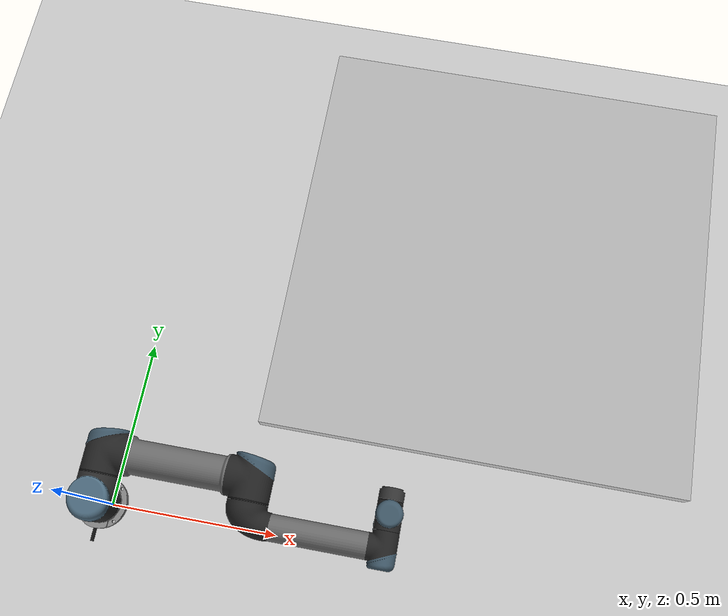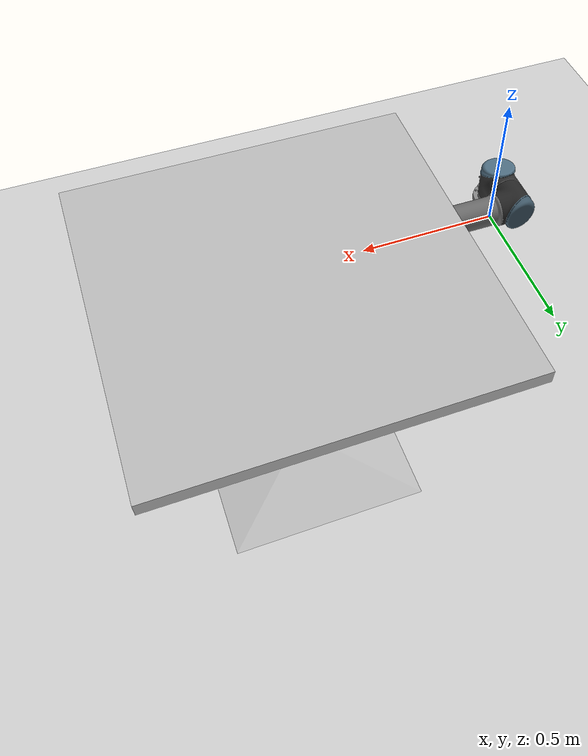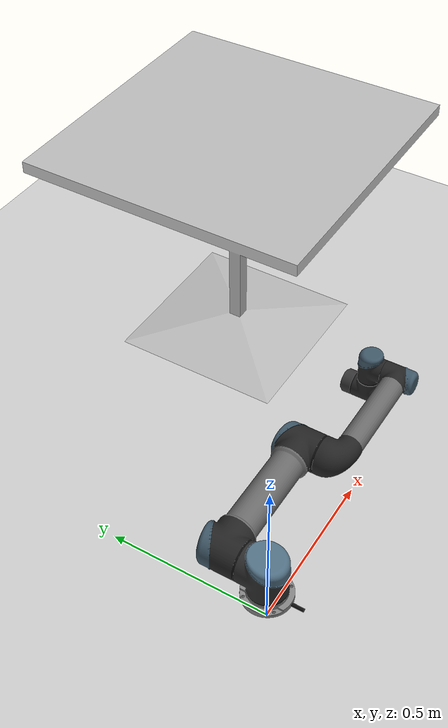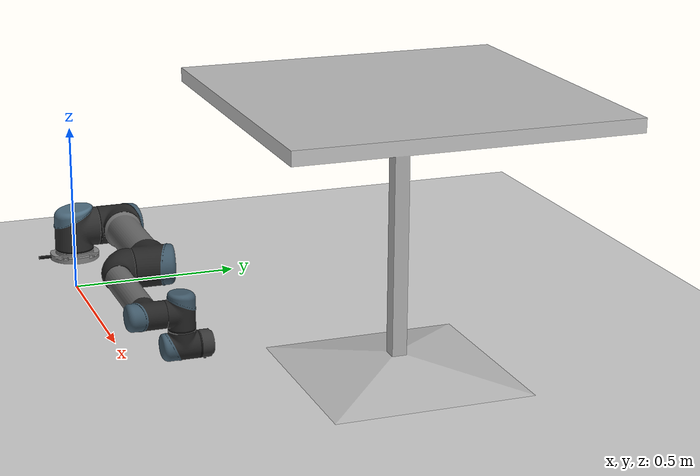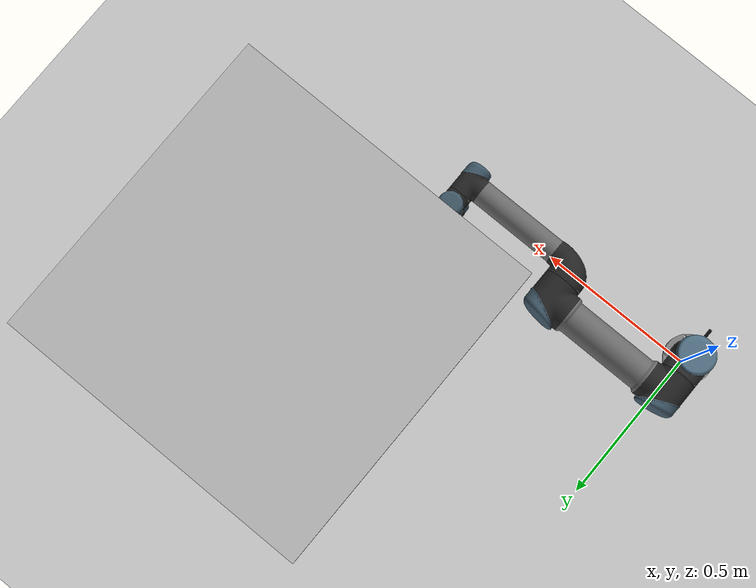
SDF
<sdf version="1.6">
 <world name="default">
  <light name="sun" type="directional">
   <pose>0 0 10 0 -0 0</pose>
   <diffuse>0.8 0.8 0.8 1</diffuse>
   <specular>0.2 0.2 0.2 1</specular>
   <attenuation>
    <range>1000</range>
    <constant>0.9</constant>
    <linear>0.01</linear>
    <quadratic>0.001</quadratic>
   </attenuation>
   <direction>-0.5 0.1 -0.9</direction>
  </light>
  <model name="ground_plane">
   <static>1</static>
   <link name="link">
    <collision name="collision">
     <geometry><plane><normal>0 0 1</normal><size>100 100</size></plane></geometry>
     <surface>
      <contact><collide_bitmask>65535</collide_bitmask></contact>
      <friction><ode><mu>100</mu><mu2>50</mu2></ode></friction>
     </surface>
    </collision>
    <visual name="visual">
     <cast_shadows>0</cast_shadows>
     <geometry><plane><normal>0 0 1</normal><size>100 100</size></plane></geometry>
     <material>
      <script><uri>file://media/materials/scripts/gazebo.material</uri><name>Gazebo/Grey</name></script>
     </material>
    </visual>
   </link>
  </model>
  <gravity>0 0 -9.8</gravity>
  <magnetic_field>6e-06 2.3e-05 -4.2e-05</magnetic_field>
  <atmosphere type="adiabatic"/>
  <physics name="default_physics" default="0" type="ode">
   <max_step_size>0.001</max_step_size>
   <real_time_factor>1</real_time_factor>
   <real_time_update_rate>1000</real_time_update_rate>
  </physics>
  <scene><ambient>0.4 0.4 0.4 1</ambient><background>0.7 0.7 0.7 1</background><shadows>1</shadows></scene>
  <audio><device>default</device></audio>
  <spherical_coordinates>
   <surface_model>EARTH_WGS84</surface_model>
   <latitude_deg>0</latitude_deg>
   <longitude_deg>0</longitude_deg>
   <elevation>0</elevation>
   <heading_deg>0</heading_deg>
  </spherical_coordinates>
  <model name="robot">
   <link name="base_link">
    <inertial>
     <mass>4</mass>
     <inertia>
      <ixx>0.00443333</ixx>
      <ixy>0</ixy>
      <ixz>0</ixz>
      <iyy>0.00443333</iyy>
      <iyz>0</iyz>
      <izz>0.0072</izz>
     </inertia>
    </inertial>
    <collision name="base_link_collision">
     <geometry>
      <mesh>
       <scale>1 1 1</scale>
       <uri>/home/gizem/catkin_ws/src/fmauch_universal_robot/ur_description/meshes/ur5/collision/base.stl</uri>
      </mesh>
     </geometry>
    </collision>
    <visual name="base_link_visual">
     <geometry>
      <mesh>
       <scale>1 1 1</scale>
       <uri>/home/gizem/catkin_ws/src/fmauch_universal_robot/ur_description/meshes/ur5/visual/base.dae</uri>
      </mesh>
     </geometry>
    </visual>
   </link>
   <joint name="world_joint" type="fixed"><child>base_link</child><parent>world</parent></joint>
   <link name="shoulder_link">
    <pose>0 0 0.089159 0 -0 0</pose>
    <inertial>
     <mass>3.7</mass>
     <inertia>
      <ixx>0.0102675</ixx>
      <ixy>0</ixy>
      <ixz>0</ixz>
      <iyy>0.0102675</iyy>
      <iyz>0</iyz>
      <izz>0.00666</izz>
     </inertia>
    </inertial>
    <collision name="shoulder_link_collision">
     <geometry>
      <mesh>
       <scale>1 1 1</scale>
       <uri>/home/gizem/catkin_ws/src/fmauch_universal_robot/ur_description/meshes/ur5/collision/shoulder.stl</uri>
      </mesh>
     </geometry>
    </collision>
    <visual name="shoulder_link_visual">
     <geometry>
      <mesh>
       <scale>1 1 1</scale>
       <uri>/home/gizem/catkin_ws/src/fmauch_universal_robot/ur_description/meshes/ur5/visual/shoulder.dae</uri>
      </mesh>
     </geometry>
     <material><script><uri>__default__</uri><name>__default__</name></script></material>
    </visual>
    <self_collide>1</self_collide>
   </link>
   <joint name="shoulder_pan_joint" type="revolute">
    <child>shoulder_link</child>
    <parent>base_link</parent>
    <axis>
     <xyz>0 0 1</xyz>
     <limit><lower>-6.28319</lower><upper>6.28319</upper><effort>150</effort><velocity>3.15</velocity></limit>
     <dynamics>
      <damping>0</damping>
      <friction>0</friction>
      <spring_reference>0</spring_reference>
      <spring_stiffness>0</spring_stiffness>
     </dynamics>
     <use_parent_model_frame>1</use_parent_model_frame>
    </axis>
   </joint>
   <link name="upper_arm_link">
    <pose>0 0.13585 0.089159 3.14159 1.57079 3.14159</pose>
    <inertial>
     <pose>0 0 0.28 0 -0 0</pose>
     <mass>8.393</mass>
     <inertia>
      <ixx>0.226891</ixx>
      <ixy>0</ixy>
      <ixz>0</ixz>
      <iyy>0.226891</iyy>
      <iyz>0</iyz>
      <izz>0.0151074</izz>
     </inertia>
    </inertial>
    <collision name="upper_arm_link_collision">
     <geometry>
      <mesh>
       <scale>1 1 1</scale>
       <uri>/home/gizem/catkin_ws/src/fmauch_universal_robot/ur_description/meshes/ur5/collision/upperarm.stl</uri>
      </mesh>
     </geometry>
    </collision>
    <visual name="upper_arm_link_visual">
     <geometry>
      <mesh>
       <scale>1 1 1</scale>
       <uri>/home/gizem/catkin_ws/src/fmauch_universal_robot/ur_description/meshes/ur5/visual/upperarm.dae</uri>
      </mesh>
     </geometry>
     <material><script><uri>__default__</uri><name>__default__</name></script></material>
    </visual>
    <self_collide>1</self_collide>
   </link>
   <joint name="shoulder_lift_joint" type="revolute">
    <child>upper_arm_link</child>
    <parent>shoulder_link</parent>
    <axis>
     <xyz>0 1 0</xyz>
     <limit><lower>-6.28319</lower><upper>6.28319</upper><effort>150</effort><velocity>3.15</velocity></limit>
     <dynamics>
      <damping>0</damping>
      <friction>0</friction>
      <spring_reference>0</spring_reference>
      <spring_stiffness>0</spring_stiffness>
     </dynamics>
     <use_parent_model_frame>1</use_parent_model_frame>
    </axis>
   </joint>
   <link name="forearm_link">
    <pose>0.425 0.01615 0.089159 3.14159 1.57079 3.14159</pose>
    <inertial>
     <pose>0 0 0.25 0 -0 0</pose>
     <mass>2.275</mass>
     <inertia>
      <ixx>0.0494433</ixx>
      <ixy>0</ixy>
      <ixz>0</ixz>
      <iyy>0.0494433</iyy>
      <iyz>0</iyz>
      <izz>0.004095</izz>
     </inertia>
    </inertial>
    <collision name="forearm_link_collision">
     <geometry>
      <mesh>
       <scale>1 1 1</scale>
       <uri>/home/gizem/catkin_ws/src/fmauch_universal_robot/ur_description/meshes/ur5/collision/forearm.stl</uri>
      </mesh>
     </geometry>
    </collision>
    <visual name="forearm_link_visual">
     <geometry>
      <mesh>
       <scale>1 1 1</scale>
       <uri>/home/gizem/catkin_ws/src/fmauch_universal_robot/ur_description/meshes/ur5/visual/forearm.dae</uri>
      </mesh>
     </geometry>
     <material><script><uri>__default__</uri><name>__default__</name></script></material>
    </visual>
    <self_collide>1</self_collide>
   </link>
   <joint name="elbow_joint" type="revolute">
    <child>forearm_link</child>
    <parent>upper_arm_link</parent>
    <axis>
     <xyz>0 1 0</xyz>
     <limit><lower>-3.14159</lower><upper>3.14159</upper><effort>150</effort><velocity>3.15</velocity></limit>
     <dynamics>
      <damping>0</damping>
      <friction>0</friction>
      <spring_reference>0</spring_reference>
      <spring_stiffness>0</spring_stiffness>
     </dynamics>
     <use_parent_model_frame>1</use_parent_model_frame>
    </axis>
   </joint>
   <link name="wrist_1_link">
    <pose>0.81725 0.01615 0.089159 3.14159 -0 3.14159</pose>
    <inertial>
     <mass>1.219</mass>
     <inertia>
      <ixx>0.111173</ixx>
      <ixy>0</ixy>
      <ixz>0</ixz>
      <iyy>0.111173</iyy>
      <iyz>0</iyz>
      <izz>0.21942</izz>
     </inertia>
    </inertial>
    <collision name="wrist_1_link_collision">
     <geometry>
      <mesh>
       <scale>1 1 1</scale>
       <uri>/home/gizem/catkin_ws/src/fmauch_universal_robot/ur_description/meshes/ur5/collision/wrist1.stl</uri>
      </mesh>
     </geometry>
    </collision>
    <visual name="wrist_1_link_visual">
     <geometry>
      <mesh>
       <scale>1 1 1</scale>
       <uri>/home/gizem/catkin_ws/src/fmauch_universal_robot/ur_description/meshes/ur5/visual/wrist1.dae</uri>
      </mesh>
     </geometry>
     <material><script><uri>__default__</uri><name>__default__</name></script></material>
    </visual>
    <self_collide>1</self_collide>
   </link>
   <joint name="wrist_1_joint" type="revolute">
    <child>wrist_1_link</child>
    <parent>forearm_link</parent>
    <axis>
     <xyz>0 1 0</xyz>
     <limit><lower>-6.28319</lower><upper>6.28319</upper><effort>28</effort><velocity>3.2</velocity></limit>
     <dynamics>
      <damping>0</damping>
      <friction>0</friction>
      <spring_reference>0</spring_reference>
      <spring_stiffness>0</spring_stiffness>
     </dynamics>
     <use_parent_model_frame>1</use_parent_model_frame>
    </axis>
   </joint>
   <link name="wrist_2_link">
    <pose>0.81725 0.10915 0.089159 3.14159 -0 3.14159</pose>
    <inertial>
     <mass>1.219</mass>
     <inertia>
      <ixx>0.111173</ixx>
      <ixy>0</ixy>
      <ixz>0</ixz>
      <iyy>0.111173</iyy>
      <iyz>0</iyz>
      <izz>0.21942</izz>
     </inertia>
    </inertial>
    <collision name="wrist_2_link_collision">
     <geometry>
      <mesh>
       <scale>1 1 1</scale>
       <uri>/home/gizem/catkin_ws/src/fmauch_universal_robot/ur_description/meshes/ur5/collision/wrist2.stl</uri>
      </mesh>
     </geometry>
    </collision>
    <visual name="wrist_2_link_visual">
     <geometry>
      <mesh>
       <scale>1 1 1</scale>
       <uri>/home/gizem/catkin_ws/src/fmauch_universal_robot/ur_description/meshes/ur5/visual/wrist2.dae</uri>
      </mesh>
     </geometry>
     <material><script><uri>__default__</uri><name>__default__</name></script></material>
    </visual>
    <self_collide>1</self_collide>
   </link>
   <joint name="wrist_2_joint" type="revolute">
    <child>wrist_2_link</child>
    <parent>wrist_1_link</parent>
    <axis>
     <xyz>0 0 -1</xyz>
     <limit><lower>-6.28319</lower><upper>6.28319</upper><effort>28</effort><velocity>3.2</velocity></limit>
     <dynamics>
      <damping>0</damping>
      <friction>0</friction>
      <spring_reference>0</spring_reference>
      <spring_stiffness>0</spring_stiffness>
     </dynamics>
     <use_parent_model_frame>1</use_parent_model_frame>
    </axis>
   </joint>
   <link name="wrist_3_link">
    <pose>0.81725 0.10915 -0.005491 3.14159 -0 3.14159</pose>
    <inertial>
     <mass>0.1879</mass>
     <inertia>
      <ixx>0.0171365</ixx>
      <ixy>0</ixy>
      <ixz>0</ixz>
      <iyy>0.0171365</iyy>
      <iyz>0</iyz>
      <izz>0.033822</izz>
     </inertia>
    </inertial>
    <collision name="wrist_3_link_collision">
     <geometry>
      <mesh>
       <scale>1 1 1</scale>
       <uri>/home/gizem/catkin_ws/src/fmauch_universal_robot/ur_description/meshes/ur5/collision/wrist3.stl</uri>
      </mesh>
     </geometry>
    </collision>
    <collision name="wrist_3_link_fixed_joint_lump__ee_link_collision_1">
     <pose>-0 0.0723 0 0 -0 1.5708</pose>
     <geometry><box><size>0.01 0.01 0.01</size></box></geometry>
    </collision>
    <visual name="wrist_3_link_visual">
     <geometry>
      <mesh>
       <scale>1 1 1</scale>
       <uri>/home/gizem/catkin_ws/src/fmauch_universal_robot/ur_description/meshes/ur5/visual/wrist3.dae</uri>
      </mesh>
     </geometry>
     <material><script><uri>__default__</uri><name>__default__</name></script></material>
    </visual>
    <self_collide>1</self_collide>
   </link>
   <joint name="wrist_3_joint" type="revolute">
    <child>wrist_3_link</child>
    <parent>wrist_2_link</parent>
    <axis>
     <xyz>0 1 0</xyz>
     <limit><lower>-6.28319</lower><upper>6.28319</upper><effort>28</effort><velocity>3.2</velocity></limit>
     <dynamics>
      <damping>0</damping>
      <friction>0</friction>
      <spring_reference>0</spring_reference>
      <spring_stiffness>0</spring_stiffness>
     </dynamics>
     <use_parent_model_frame>1</use_parent_model_frame>
    </axis>
   </joint>
   <static>0</static>
   <plugin name="ros_control" filename="libgazebo_ros_control.so"><robotNamespace>/</robotNamespace></plugin>
   <pose>0 0 0.1 2.8e-05 -0.00015 0</pose>
  </model>
  <light name="user_point_light_0" type="point">
   <pose>0.568859 0.294515 1 0 -0 0</pose>
   <diffuse>0.5 0.5 0.5 1</diffuse>
   <specular>0.1 0.1 0.1 1</specular>
   <attenuation>
    <range>20</range>
    <constant>0.5</constant>
    <linear>0.01</linear>
    <quadratic>0.001</quadratic>
   </attenuation>
   <cast_shadows>0</cast_shadows>
   <direction>0 0 -1</direction>
  </light>
  <light name="user_directional_light_0" type="directional">
   <pose>0.85556 1.04572 1 0 -0 0</pose>
   <diffuse>0.5 0.5 0.5 1</diffuse>
   <specular>0.1 0.1 0.1 1</specular>
   <direction>0.1 0.1 -0.9</direction>
   <attenuation>
    <range>20</range>
    <constant>0.5</constant>
    <linear>0.01</linear>
    <quadratic>0.001</quadratic>
   </attenuation>
  </light>
  <model name="cafe_table">
   <static>1</static>
   <link name="link">
    <collision name="surface">
     <pose>0 0 0.755 0 -0 0</pose>
     <geometry><box><size>0.913 0.913 0.04</size></box></geometry>
    </collision>
    <collision name="column">
     <pose>0 0 0.37 0 -0 0</pose>
     <geometry><box><size>0.042 0.042 0.74</size></box></geometry>
    </collision>
    <collision name="base">
     <pose>0 0 0.02 0 -0 0</pose>
     <geometry><box><size>0.56 0.56 0.04</size></box></geometry>
    </collision>
    <visual name="visual">
     <geometry><mesh><uri>model://cafe_table/meshes/cafe_table.dae</uri></mesh></geometry>
    </visual>
   </link>
   <pose>0.955542 0.668275 0 0 -0 0</pose>
  </model>
 </world>
</sdf>
